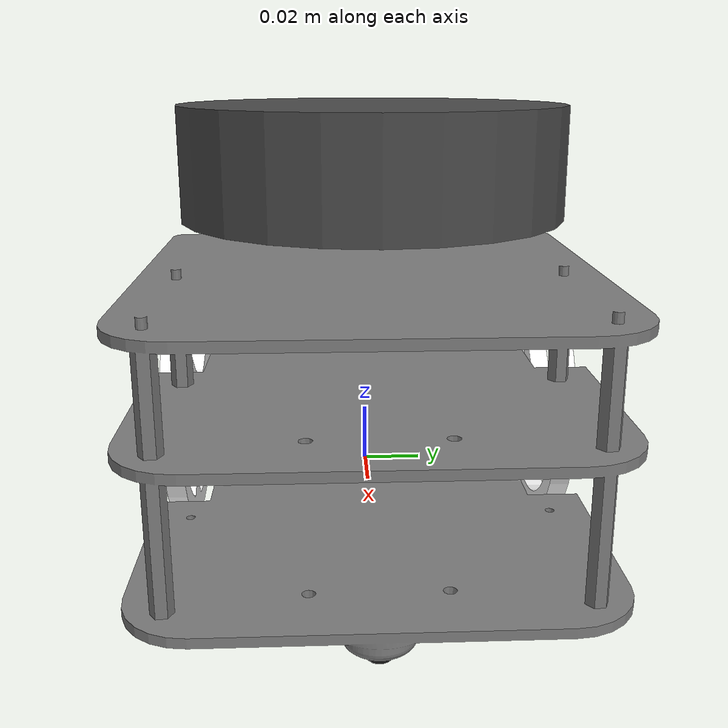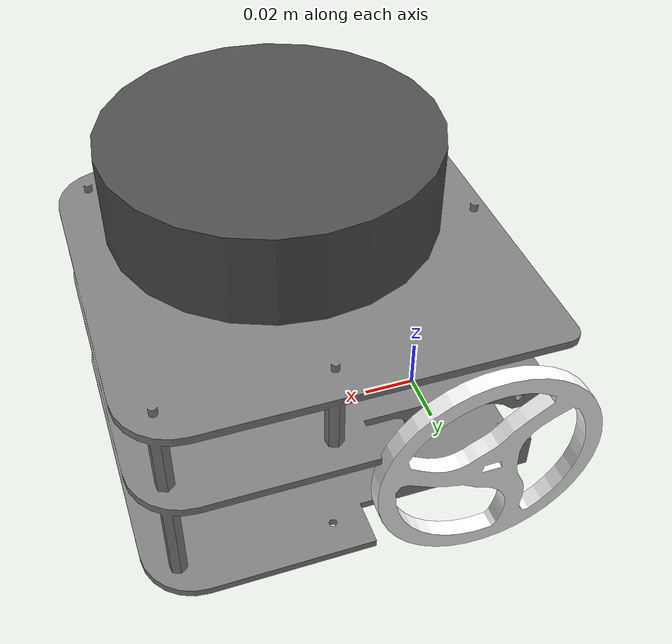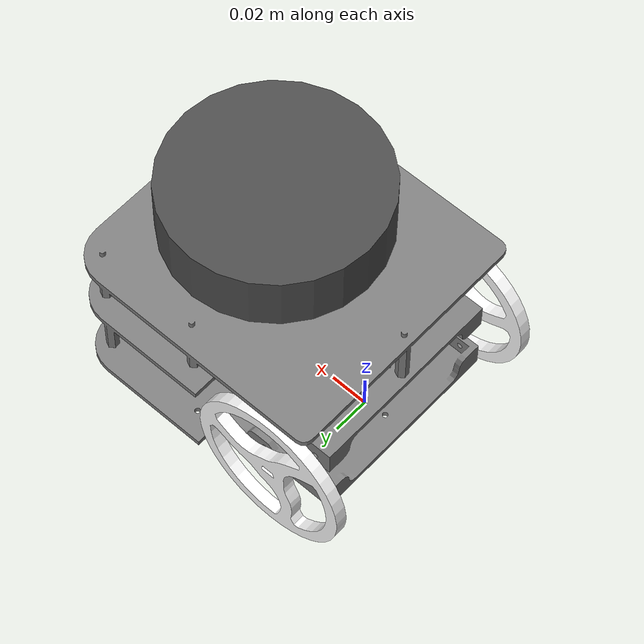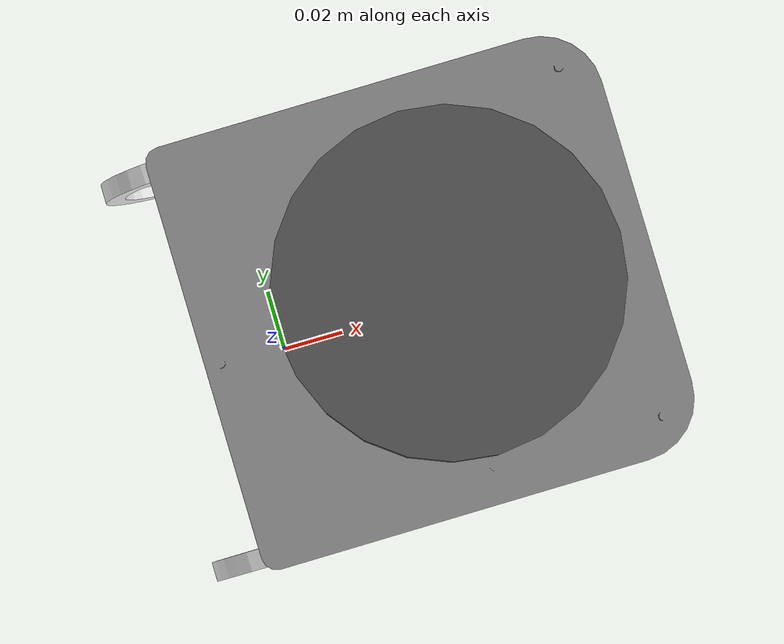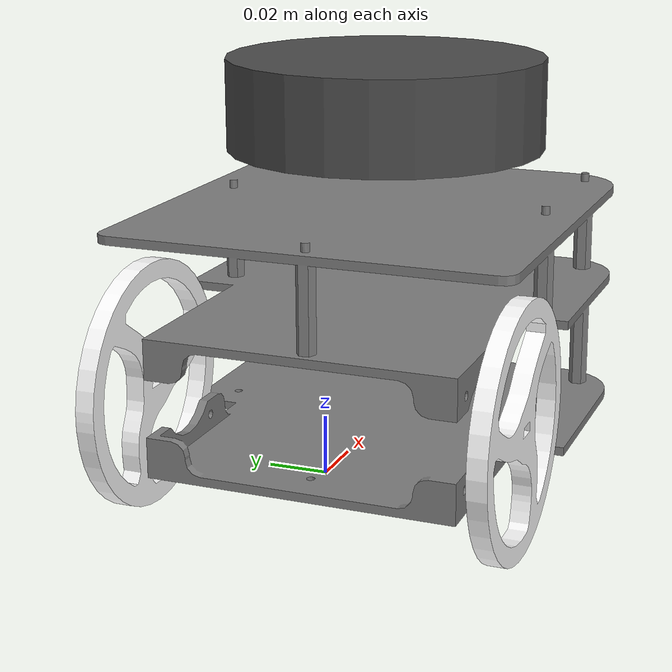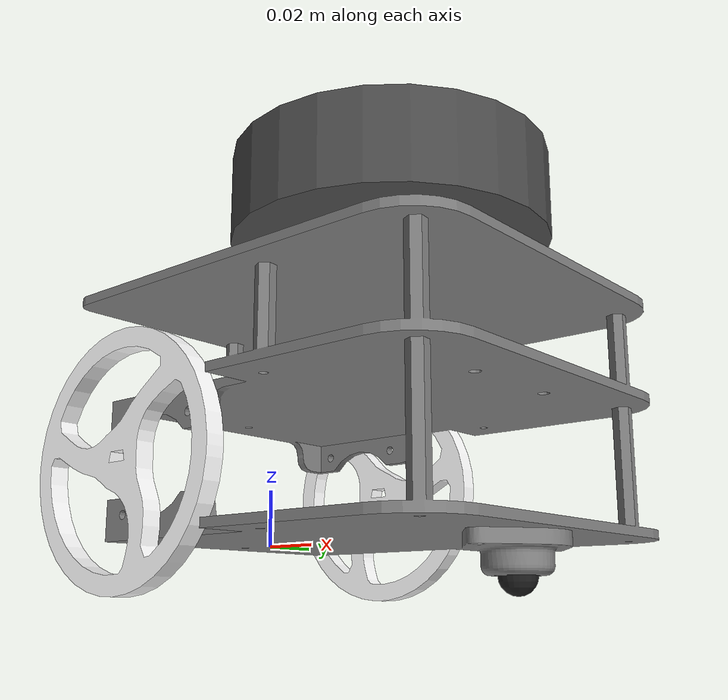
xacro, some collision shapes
<?xml version="1.0" encoding="utf-8"?>
<robot name="icar" xmlns:xacro="http://ros.org/wiki/xacro">
	<include filename="$(find icar_description)/urdf/common_properties.xacro" />
	<include filename="$(find icar_description)/urdf/icar.gazebo.xacro" />
	<link name="base_footprint" />
	<!-- Body -->
	<property name="body_mass" value="0.2" />
	<property name="body_length" value="0.15" />
	<property name="body_width" value="0.15" />
	<property name="body_height" value="0.038" />
	<property name="body_height_offset" value="0.019" />
	<joint name="base_joint" type="fixed">
		<parent link="base_footprint" />
		<child link="base_link" />
		<origin xyz="0.053 0.0 0.0" rpy="0 0 0" />
	</joint>
	<link name="base_link">
		<box_inertial_matrix m="${body_mass}" l="${body_length}" w="${body_width}" h="${body_height}" zoffset="${body_height_offset}" />
		<visual>
			<origin xyz="0 0 0" rpy="0 0 0" />
			<geometry>
				<mesh filename="package://icar_description/meshes/body.stl" />
			</geometry>
			<material name="grey" />
		</visual>
		<collision>
			<origin xyz="0 0 ${body_height_offset}" rpy="0 0 0" />
			<geometry>
				<box size="${body_length} ${body_width} ${body_height}" />
			</geometry>
		</collision>
	</link>
	<!-- Wheel -->
	<property name="wheel_mass" value="0.02" />
	<property name="wheel_radius" value="0.045" />
	<property name="wheel_height" value="0.006" />
	<property name="wheel_y_offset" value="0.000" />
	<joint name="base_left_wheel_joint" type="continuous">
		<origin xyz="-0.0533 0.065 0.024" rpy="0 0 0" />
		<parent link="base_link" />
		<child link="left_wheel_link" />
		<axis xyz="0 1 0" />
	</joint>
	<link name="left_wheel_link">
		<cylinder_inertial_matrix m="${wheel_mass}" r="${wheel_radius}" h="${wheel_height}" yoffset="${wheel_y_offset}" />
		<visual>
			<origin xyz="0 0 0" rpy="0 0 0" />
			<geometry>
				<mesh filename="package://icar_description/meshes/wheel.stl" />
			</geometry>
			<material name="white" />
		</visual>
		<collision>
			<origin xyz="0 0 0" rpy="1.5708 0 0" />
			<geometry>
				<cylinder length="${wheel_height}" radius="${wheel_radius}" />
			</geometry>
		</collision>
	</link>
	<joint name="base_right_wheel_joint" type="continuous">
		<origin xyz="-0.0533 -0.065 0.024" rpy="0 0 3.1415926" />
		<parent link="base_link" />
		<child link="right_wheel_link" />
		<axis xyz="0 -1 0" />
	</joint>
	<link name="right_wheel_link">
		<cylinder_inertial_matrix m="${wheel_mass}" r="${wheel_radius}" h="${wheel_height}" yoffset="${wheel_y_offset}" />
		<visual>
			<origin xyz="0 0 0" rpy="0 0 0" />
			<geometry>
				<mesh filename="package://icar_description/meshes/wheel.stl" />
			</geometry>
			<material name="white" />
		</visual>
		<collision>
			<origin xyz="0 0 0" rpy="1.5708 0 0" />
			<geometry>
				<cylinder length="${wheel_height}" radius="${wheel_radius}" />
			</geometry>
		</collision>
	</link>
	<!-- Caster -->
	<property name="caster_radius" value="0.006" />
	<property name="caster_mass" value="0.005" />
	<joint name="baseToCaster_joint" type="fixed">
		<origin xyz="0.049373 0 -0.0126" rpy="0 0 0" />
		<parent link="base_link" />
		<child link="caster_link" />
		<axis xyz="0 0 0" />
	</joint>
	<link name="caster_link">
		<sphere_inertial_matrix m="${caster_mass}" r="${caster_radius}" />
		<visual>
			<origin xyz="0 0 0 " rpy="0 0 0" />
			<geometry>
				<sphere radius="${caster_radius}" />
			</geometry>
			<material name="Black" />
		</visual>
		<collision>
			<geometry>
				<sphere radius="${caster_radius}" />
			</geometry>
			<origin xyz="0 0 0 " rpy="0 0 0" />
		</collision>
	</link>
	<!-- Lidar -->
	<joint name="base_scan_joint" type="fixed">
		<parent link="base_link" />
		<child link="base_scan" />
		<origin xyz="-0.012 0 0.122" rpy="0 0 0" />
	</joint>
	<link name="base_scan">
		<visual>
			<origin xyz="0 0 0.0" rpy="0 0 0" />
			<geometry>
				<mesh filename="package://icar_description/meshes/lds.stl" scale="0.001 0.001 0.001" />
			</geometry>
			<material name="dark" />
		</visual>
		<collision>
			<origin xyz="0.015 0 -0.0065" rpy="0 0 0" />
			<geometry>
				<cylinder length="0.0315" radius="0.055" />
			</geometry>
		</collision>
		<inertial>
			<mass value="0.114" />
			<origin xyz="0 0 0" />
			<inertia ixx="0.001" ixy="0.0" ixz="0.0" iyy="0.001" iyz="0.0" izz="0.001" />
		</inertial>
	</link>
	<!-- Camera -->
	<joint name="camera_joint" type="fixed">
		<origin xyz="0.073 -0.011 0.084" rpy="0 0 0" />
		<parent link="base_link" />
		<child link="camera_link" />
	</joint>
	<link name="camera_link">
		<collision>
			<origin xyz="0.005 0.011 0.013" rpy="0 0 0" />
			<geometry>
				<box size="0.015 0.030 0.027" />
			</geometry>
		</collision>
	</link>
	<joint name="camera_rgb_joint" type="fixed">
		<origin xyz="0.003 0.011 0.009" rpy="0 0 0" />
		<parent link="camera_link" />
		<child link="camera_rgb_frame" />
	</joint>
	<link name="camera_rgb_frame" />
	<joint name="camera_rgb_optical_joint" type="fixed">
		<origin xyz="0 0 0" rpy="-1.57 0 -1.57" />
		<parent link="camera_rgb_frame" />
		<child link="camera_rgb_optical_frame" />
	</joint>
	<link name="camera_rgb_optical_frame" />
	<!-- Imu -->
	<joint name="imu_joint" type="fixed">
		<parent link="base_link" />
		<child link="imu_link" />
		<origin xyz="0 0 0.030" rpy="0 0 0" />
	</joint>
	<link name="imu_link" />
</robot>

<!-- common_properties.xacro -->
<robot name="xacro_properties"
  xmlns:xacro="http://ros.org/wiki/xacro">

  <!-- Init colour -->
  <material name="black">
    <color rgba="0.0 0.0 0.0 1.0"/>
  </material>

  <material name="dark">
    <color rgba="0.3 0.3 0.3 1.0"/>
  </material>
  <material name="light_black">
    <color rgba="0.4 0.4 0.4 1.0"/>
  </material>

  <material name="blue">
    <color rgba="0.0 0.0 0.8 1.0"/>
  </material>

  <material name="green">
    <color rgba="0.0 0.8 0.0 1.0"/>
  </material>

  <material name="grey">
    <color rgba="0.5 0.5 0.5 1.0"/>
  </material>

  <material name="orange">
    <color rgba="${255/255} ${108/255} ${10/255} 1.0"/>
  </material>

  <material name="brown">
    <color rgba="${222/255} ${207/255} ${195/255} 1.0"/>
  </material>

  <material name="red">
    <color rgba="0.8 0.0 0.0 1.0"/>
  </material>

  <material name="white">
    <color rgba="1.0 1.0 1.0 1.0"/>
  </material>

  <!-- ******************** Macro for inertia matrix ******************** -->
  <xacro:macro name="sphere_inertial_matrix" params="m r">
    <inertial>
      <mass value="${m}" />
      <inertia ixx="${2*m*r*r/5}" ixy="0" ixz="0" iyy="${2*m*r*r/5}" iyz="0" izz="${2*m*r*r/5}" />
    </inertial>
  </xacro:macro>

  <xacro:macro name="cylinder_inertial_matrix" params="m r h yoffset">
    <inertial>
    <origin xyz="0 ${yoffset} 0" rpy="0 0 0" />
      <mass value="${m}" />
      <inertia ixx="${m*(3*r*r+h*h)/12}" ixy = "0" ixz = "0" iyy="${m*(3*r*r+h*h)/12}" iyz = "0" izz="${m*r*r/2}" />
    </inertial>
  </xacro:macro>

  <xacro:macro name="box_inertial_matrix" params="m l w h zoffset">
    <inertial>
      <origin xyz="0 0 ${zoffset}" rpy="0 0 0" />
      <mass value="${m}" />
      <inertia ixx="${m*(l*l+h*h)/12}" ixy = "0" ixz = "0" iyy="${m*(w*w+h*h)/12}" iyz = "0" izz="${m*(w*w+l*l)/12}" />
    </inertial>
  </xacro:macro>

</robot>
